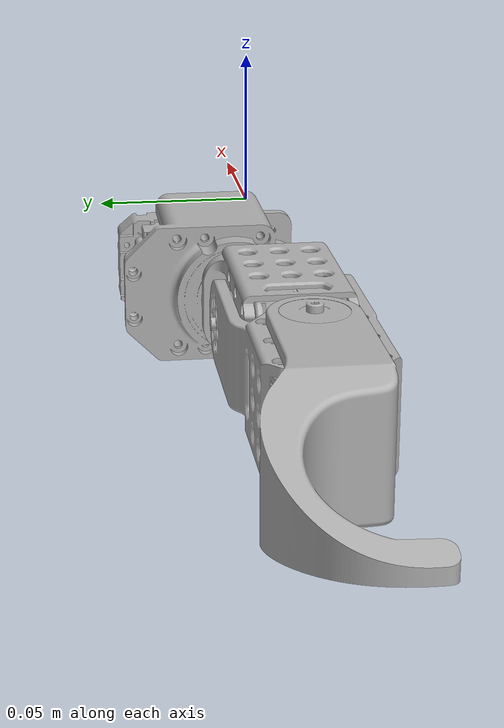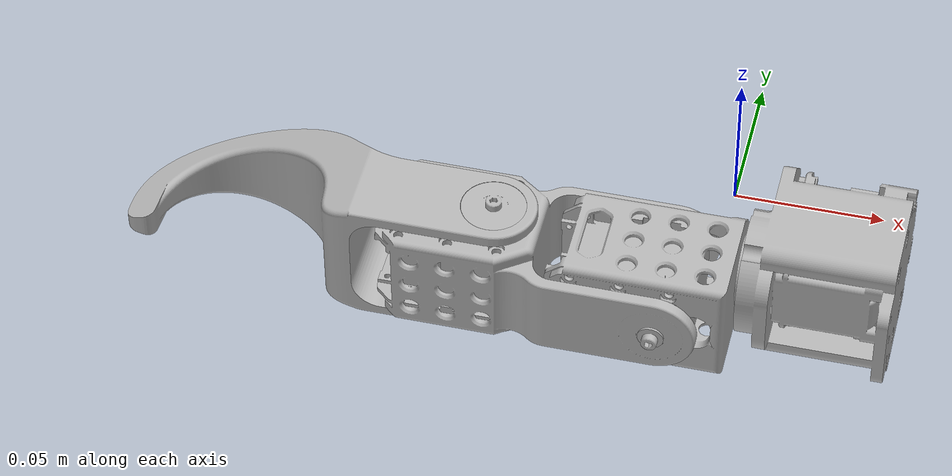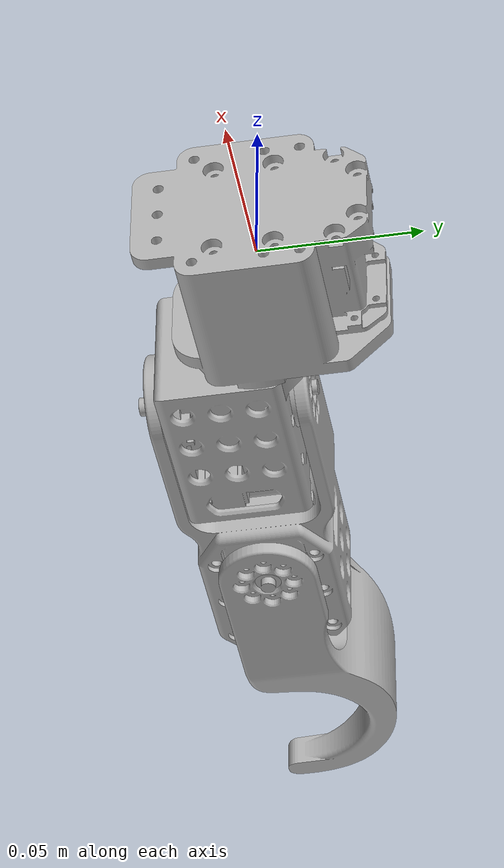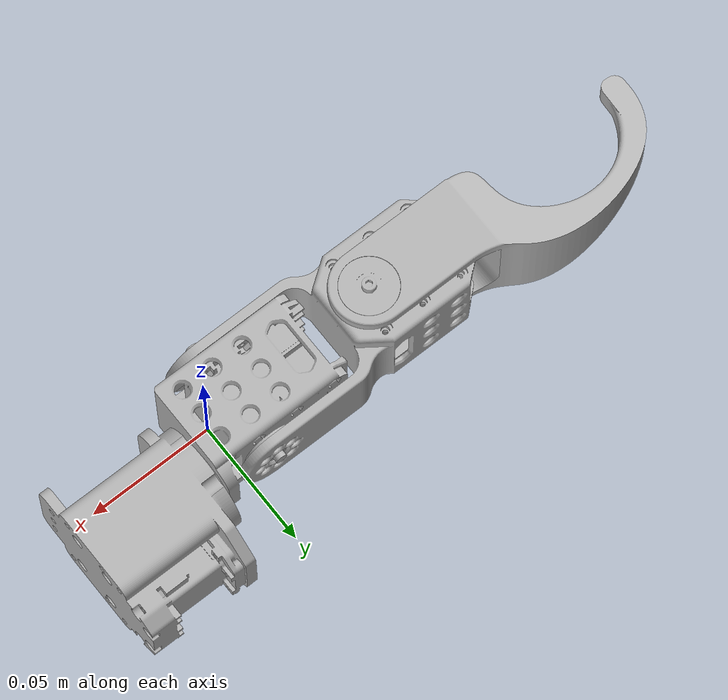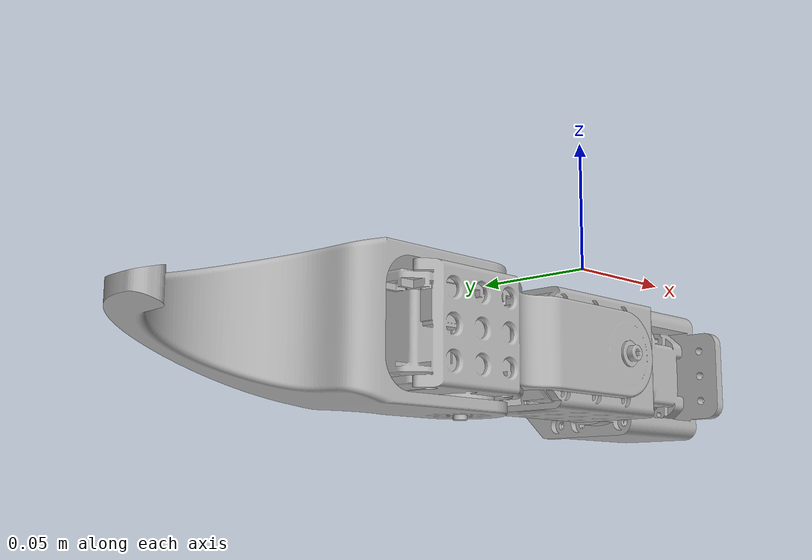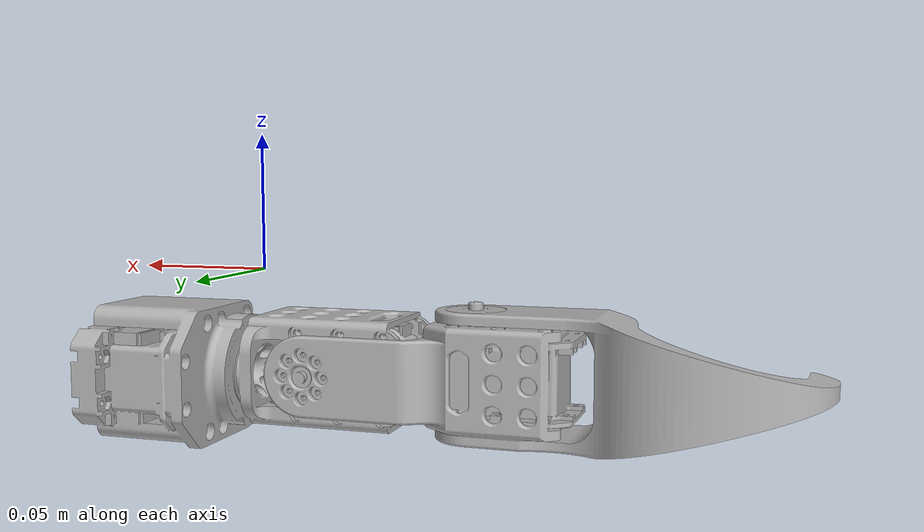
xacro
<?xml version="1.0" ?>
<robot name="sence_leg" xmlns:xacro="http://www.ros.org/wiki/xacro">

<xacro:include filename="$(find sence_leg_description)/urdf/materials.xacro" />
<xacro:include filename="$(find sence_leg_description)/urdf/sence_leg.trans" />
<xacro:include filename="$(find sence_leg_description)/urdf/sence_leg.gazebo" />
<link name="base_link">
  <inertial>
    <origin xyz="0.029044932513473305 0.010265080427010284 -0.03814827760382364" rpy="0 0 0"/>
    <mass value="0.15187448298114298"/>
    <inertia ixx="5.3e-05" iyy="6.1e-05" izz="6.9e-05" ixy="-6e-06" iyz="0.0" ixz="0.0"/>
  </inertial>
  <visual>
    <origin xyz="0 0 0" rpy="0 0 0"/>
    <geometry>
      <mesh filename="package://sence_leg_description/meshes/base_link.stl" scale="0.001 0.001 0.001"/>
    </geometry>
    <material name="silver"/>
  </visual>
  <collision>
    <origin xyz="0 0 0" rpy="0 0 0"/>
    <geometry>
      <mesh filename="package://sence_leg_description/meshes/base_link.stl" scale="0.001 0.001 0.001"/>
    </geometry>
  </collision>
</link>

<link name="HMMR_Leg_J2_v1_1">
  <inertial>
    <origin xyz="-0.04078394902352935 -0.013231283994066126 0.00021684450055575039" rpy="0 0 0"/>
    <mass value="0.09734685103972182"/>
    <inertia ixx="2.2e-05" iyy="3.6e-05" izz="4e-05" ixy="-2e-06" iyz="0.0" ixz="0.0"/>
  </inertial>
  <visual>
    <origin xyz="-0.01348 -0.002676 0.038139" rpy="0 0 0"/>
    <geometry>
      <mesh filename="package://sence_leg_description/meshes/HMMR_Leg_J2_v1_1.stl" scale="0.001 0.001 0.001"/>
    </geometry>
    <material name="silver"/>
  </visual>
  <collision>
    <origin xyz="-0.01348 -0.002676 0.038139" rpy="0 0 0"/>
    <geometry>
      <mesh filename="package://sence_leg_description/meshes/HMMR_Leg_J2_v1_1.stl" scale="0.001 0.001 0.001"/>
    </geometry>
  </collision>
</link>

<link name="HMMR_Leg_J3_v1_1">
  <inertial>
    <origin xyz="-0.06366942125676311 -0.021943300476205383 0.0024103683252244337" rpy="0 0 0"/>
    <mass value="0.1208747488020619"/>
    <inertia ixx="3.4e-05" iyy="0.000102" izz="0.000104" ixy="1.4e-05" iyz="-1e-06" ixz="2e-06"/>
  </inertial>
  <visual>
    <origin xyz="0.020447 -0.009456 0.037939" rpy="0 0 0"/>
    <geometry>
      <mesh filename="package://sence_leg_description/meshes/HMMR_Leg_J3_v1_1.stl" scale="0.001 0.001 0.001"/>
    </geometry>
    <material name="silver"/>
  </visual>
  <collision>
    <origin xyz="0.020447 -0.009456 0.037939" rpy="0 0 0"/>
    <geometry>
      <mesh filename="package://sence_leg_description/meshes/HMMR_Leg_J3_v1_1.stl" scale="0.001 0.001 0.001"/>
    </geometry>
  </collision>
</link>

<link name="HMMR_Leg_J4_1">
  <inertial>
    <origin xyz="-0.06827181090766318 0.01066089288586344 0.020893759814543007" rpy="0 0 0"/>
    <mass value="0.052701725493830516"/>
    <inertia ixx="1.8e-05" iyy="7.3e-05" izz="7.2e-05" ixy="1.4e-05" iyz="0.0" ixz="-1e-06"/>
  </inertial>
  <visual>
    <origin xyz="0.085454 0.010544 0.057414" rpy="0 0 0"/>
    <geometry>
      <mesh filename="package://sence_leg_description/meshes/HMMR_Leg_J4_v1_1.stl" scale="0.001 0.001 0.001"/>
    </geometry>
    <material name="silver"/>
  </visual>
  <collision>
    <origin xyz="0.085454 0.010544 0.057414" rpy="0 0 0"/>
    <geometry>
      <mesh filename="package://sence_leg_description/meshes/HMMR_Leg_J4_v1_1.stl" scale="0.001 0.001 0.001"/>
    </geometry>
  </collision>
</link>

<joint name="Rev1" type="continuous">
  <origin xyz="0.01348 0.002676 -0.038139" rpy="0 0 0"/>
  <parent link="base_link"/>
  <child link="HMMR_Leg_J2_v1_1"/>
  <axis xyz="1.0 0.0 -0.0"/>
</joint>

<joint name="Rev2" type="revolute">
  <origin xyz="-0.033927 0.00678 0.0002" rpy="0 0 0"/>
  <parent link="HMMR_Leg_J2_v1_1"/>
  <child link="HMMR_Leg_J3_v1_1"/>
  <axis xyz="0.0 -1.0 0.0"/>
  <limit upper="1.919862" lower="-1.919862" effort="100" velocity="100"/>
</joint>

<joint name="Rev3" type="revolute">
  <origin xyz="-0.065007 -0.02 -0.019475" rpy="0 0 0"/>
  <parent link="HMMR_Leg_J3_v1_1"/>
  <child link="HMMR_Leg_J4_1"/>
  <axis xyz="-0.0 -0.0 1.0"/>
  <limit upper="2.356194" lower="-2.268928" effort="100" velocity="100"/>
</joint>

</robot>

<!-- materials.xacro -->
<robot name="sence_leg" xmlns:xacro="http://www.ros.org/wiki/xacro" >

<material name="silver">
  <color rgba="0.700 0.700 0.700 1.000"/>
</material>
<material name="black">
  <color rgba="1 1 1 1"/>
</material>

</robot>

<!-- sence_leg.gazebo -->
<robot name="sence_leg" xmlns:xacro="http://www.ros.org/wiki/xacro" >

<xacro:property name="body_color" value="Gazebo/Silver" />

<gazebo>
  <plugin name="control" filename="libgazebo_ros_control.so"/>
</gazebo>
<gazebo reference="base_link">
  <material>${body_color}</material>
  <mu1>0.2</mu1>
  <mu2>0.2</mu2>
  <selfCollide>true</selfCollide>
  <gravity>true</gravity>
</gazebo>

<gazebo reference="HMMR_Leg_J2_v1_1">
  <material>${body_color}</material>
  <mu1>0.2</mu1>
  <mu2>0.2</mu2>
  <selfCollide>true</selfCollide>
</gazebo>

<gazebo reference="HMMR_Leg_J3_v1_1">
  <material>${body_color}</material>
  <mu1>0.2</mu1>
  <mu2>0.2</mu2>
  <selfCollide>true</selfCollide>
</gazebo>

<gazebo reference="HMMR_Leg_J4_v1_1">
  <material>${body_color}</material>
  <mu1>0.2</mu1>
  <mu2>0.2</mu2>
  <selfCollide>true</selfCollide>
</gazebo>

</robot>
